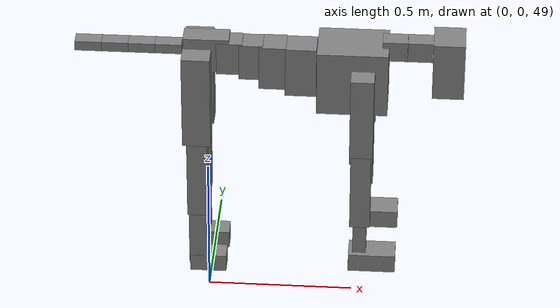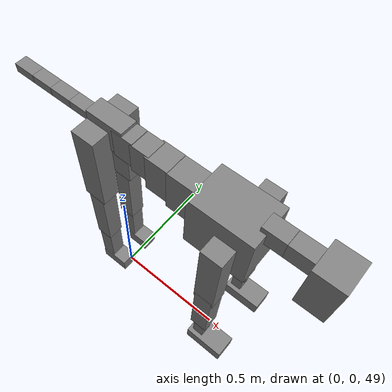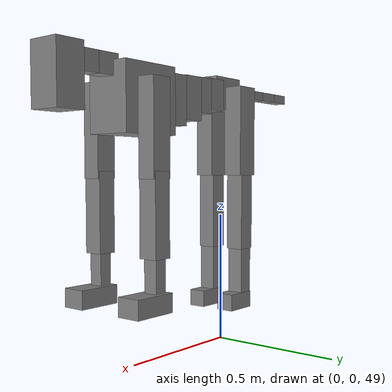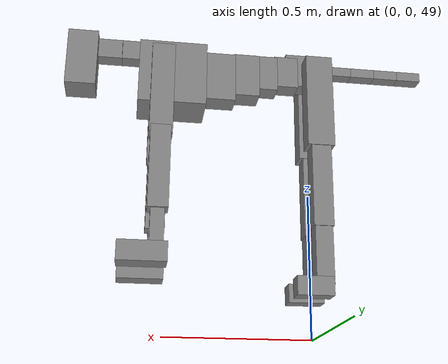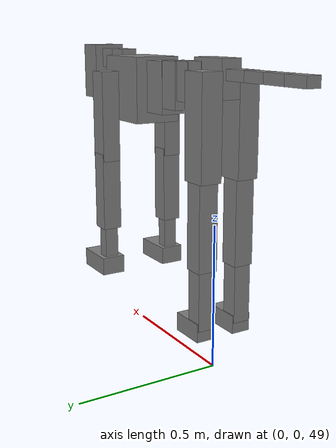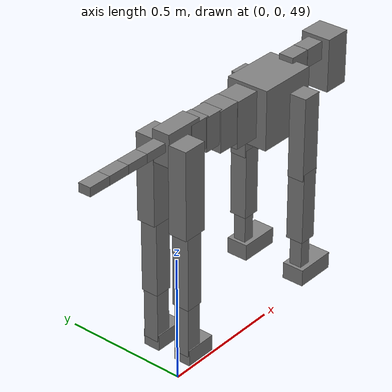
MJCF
<mujoco model="dog">

    <default>
        <joint armature="0.02" stiffness="1" damping="0.2" limited="true" />
        <geom condim="3" friction="1 0.05 0.05" margin="0.01" />
        <motor ctrllimited="true" ctrlrange="-1.0 1.0" forcelimited="true" gear="50" />
    </default>

    <compiler inertiafromgeom="true" angle="radian" />

    <option timestep="0.016" iterations="50" tolerance="1e-10" solver="Newton" jacobian="dense" cone="pyramidal" />

    <size nconmax="20000" njmax="60000" nstack="5000000" />
    <visual>
        <map force="0.1" zfar="30" />
        <rgba haze="0.15 0.25 0.35 1" />
        <quality shadowsize="2048" />
        <global offwidth="800" offheight="800" />
    </visual>

    <asset>
        <texture type="skybox" builtin="gradient" rgb1="0.3 0.5 0.7" rgb2="0 0 0" width="512" height="512" />
        <texture name="texplane" type="2d" builtin="checker" rgb1=".2 .3 .4" rgb2=".1 0.15 0.2" width="512" height="512" mark="cross" markrgb=".8 .8 .8" />
        <texture name="texgeom" type="cube" builtin="flat" mark="cross" width="127" height="1278" rgb1="0.8 0.6 0.4" rgb2="0.8 0.6 0.4" markrgb="1 1 1" random="0.01" />

        <material name="matplane" reflectance="0.3" texture="texplane" texrepeat="1 1" texuniform="true" />
        <material name="matgeom" texture="texgeom" texuniform="true" rgba="0.8 0.6 .4 1" />
    </asset>

    <worldbody>
        <geom name="floor" pos="0 0 0" size="0 0 .25" type="plane" material="matplane" condim="3" />

        <light directional="false" diffuse=".2 .2 .2" specular="0 0 0" pos="0 0 5" dir="0 0 -1" castshadow="false" />
        <light mode="targetbodycom" target="torso" directional="false" diffuse=".8 .8 .8" specular="0.3 0.3 0.3" pos="0 0 4.0" dir="0 0 -1" />

        <body name="root" pos="0 0 50">
            <freejoint name="root_1" />
            <geom type="box" pos="0 0 -0.02" size="0.0774  0.0358  0.063" density="2030" />

            <body name="spine1" pos="0.054 0 0">
                <joint name="spine1_y" axis="0 1 0" range="0 0.7" limited="true" />
                <geom type="box" pos="0.02375 0 -0.03" size="0.04375  0.0375  0.05985" density="2030" />

                <body name="spine2" pos="0.0612 0 0">
                    <joint name="spine2_y" axis="0 1 0" range="-0.15 0.15" limited="true" />
                    <geom type="box" pos="0.03555  0  -0.04" size="0.04055  0.039  0.06615" density="2030" />

                    <body name="spine3" pos="0.0730 0 0">
                        <joint name="spine3_y" axis="0 1 0" range="-0.15 0.15" limited="true" />
                        <geom type="box" pos="0.03555  0  -0.057" size="0.04555  0.0445  0.081" density="2030" />

                        <body name="spine4" pos="0.0780 0 0">
                            <joint name="spine4_y" axis="0 1 0" range="-0.15 0.15" limited="true" />
                            <geom type="box" pos="0.05265  0  -0.07" size="0.05265  0.045  0.09135" density="2030" />

                            <body name="torso" pos="0.1082 0 0">
                                <joint name="torso_y" axis="0 1 0" range="-0.15 0.15" limited="true" />
                                <geom type="box" pos="0.11925  0  -0.085" size="0.11925  0.085  0.11745" density="2030" />

                                <body name="neck1" pos="0.2160  0   0.0180">
                                    <joint name="neck1_y" axis="0 1 0" range="-1.2  -1" limited="true" />
                                    <geom type="box" pos="0.0423  0  0" size="0.0423  0.03  0.036" density="2325" />

                                    <body name="neck2" pos="0.0853  0  0">
                                        <joint name="neck2_y" axis="0 1 0" range="0.1  0" limited="true" />
                                        <geom type="box" pos="0.0423  0  0" size="0.0423  0.03  0.036" density="2325" />

                                        <body name="head" pos="0.0853  0  0">
                                            <joint name="head_y" axis="0 1 0" range="-0.3  -0.2" limited="true" />
                                            <geom type="box" pos="0.0531  0  -0.055" size="0.0531  0.06  0.1044" density="4030" />

                                        </body>
                                    </body>
                                </body>

                                <body name="front_shoulder" pos="0.156  0   -0.0480">
                                    <joint name="front_shoulder_y" axis="0 1 0" range="-1 1.5" limited="true" />
                                    <geom type="box" pos="0 0.13 -0.1383" size="0.0392  0.0335  0.1650" density="1158" />
                                    <geom type="box" pos="0 -0.13 -0.1383" size="0.0392  0.0335  0.1650" density="1158" />

                                    <body name="front_elbow" pos="0  0  -0.2766">
                                        <joint name="front_elbow_y" axis="0 1 0" range="-2 0" limited="true" />
                                        <geom type="box" pos="0 0.13 -0.1433" size="0.0344  0.0351  0.1433" density="1081" />
                                        <geom type="box" pos="0 -0.13 -0.1433" size="0.0344  0.0351  0.1433" density="1081" />

                                        <body name="front_wrist" pos="0  0  -0.2866">
                                            <joint name="front_wrist_y" axis="0 1 0" range="-0.2 0" limited="true" />
                                            <geom type="box" pos="0 0.13 -0.0641" size="0.0232  0.0257  0.0772" density="1664" />
                                            <geom type="box" pos="0 -0.13 -0.0641" size="0.0232  0.0257  0.0772" density="1664" />

                                            <body name="front_finger_end" pos="0  0  -0.1282">
                                                <joint name="front_finger_y" axis="0 1 0" range="-0.4 1" limited="true" />
                                                <geom type="box" pos="0.0439  0.13  -0.0182" size="0.0805  0.0439  0.0332" density="1515" />
                                                <geom type="box" pos="0.0439  -0.13  -0.0182" size="0.0805  0.0439  0.0332" density="1515" />

                                            </body>

                                        </body>
                                    </body>
                                </body>

                            </body>
                        </body>
                    </body>
                </body>
            </body>

            <body name="back_hip" pos="-0.03 0 -0.018">
                <joint name="back_hip_y" axis="0 1 0" range="-1.5 0.3" limited="true" />
                <geom type="box" pos="0 0.07 -0.1494" size="0.0480  0.0376  0.1722" density="1154" />
                <geom type="box" pos="0 -0.07 -0.1494" size="0.0480  0.0376  0.1722" density="1154" />

                <body name="back_knee" pos="0  0  -0.2988">
                    <joint name="back_knee_y" axis="0 1 0" range="0 2.8" limited="true" />
                    <geom type="box" pos="0 0.07 -0.1494" size="0.0348  0.0343  0.1649" density="1227" />
                    <geom type="box" pos="0 -0.07 -0.1494" size="0.0348  0.0343  0.1649" density="1227" />

                    <body name="back_ankle" pos="0  0  -0.2988">
                        <joint name="back_ankle_y" axis="0 1 0" range="-2.2 0" limited="true" />
                        <geom type="box" pos="0 0.07 -0.1017" size="0.0306  0.0306  0.1130" density="1284" />
                        <geom type="box" pos="0 -0.07 -0.1017" size="0.0306  0.0306  0.1130" density="1284" />

                        <body name="back_toe_end" pos="0  0  -0.2034">
                            <joint name="back_toe_y" axis="0 1 0" range="-0.4 1" limited="true" />
                            <geom type="box" pos="0.0341  0.07  -0.0169" size="0.0625  0.0341  0.0319" density="1515" />
                            <geom type="box" pos="0.0341  -0.07  -0.0169" size="0.0625  0.0341  0.0319" density="1515" />

                        </body>
                    </body>
                </body>
            </body>

            <body name="tail1" pos="-0.074 0 -0.006">
                <joint name="tail1_y" axis="0 1 0" range="-0.2 0.2" limited="true" />
                <geom type="box" pos="-0.0536  0  0" size="0.045  0.025  0.0175" density="1587" />

                <body name="tail2" pos="-0.09 0 0">
                    <joint name="tail2_y" axis="0 1 0" range="-0.2 0.2" limited="true" />
                    <geom type="box" pos="-0.0536  0  0" size="0.045  0.025  0.0175" density="1587" />

                    <body name="tail3" pos="-0.09 0 0">
                        <joint name="tail3_y" axis="0 1 0" range="-0.2 0.2" limited="true" />
                        <geom type="box" pos="-0.0536  0  0" size="0.045  0.025  0.0175" density="1587" />

                        <body name="tail4" pos="-0.09 0 0">
                            <joint name="tail4_y" axis="0 1 0" range="-0.2 0.2" limited="true" />
                            <geom type="box" pos="-0.0536  0  0" size="0.045  0.025  0.0175" density="1587" />

                        </body>
                    </body>
                </body>
            </body>
        </body>
    </worldbody>

    <actuator>
        <motor joint="spine1_y" forcerange="-150 150     " />
        <motor joint="spine2_y" forcerange="-150 150     " />
        <motor joint="spine3_y" forcerange="-150 150     " />
        <motor joint="spine4_y" forcerange="-150 150     " />
        <motor joint="torso_y" forcerange="-150 150     " />
        <motor joint="neck1_y" forcerange="-100 100       " />
        <motor joint="neck2_y" forcerange="-100 100       " />
        <motor joint="head_y" forcerange="-150 150       " />
        <motor joint="front_shoulder_y" forcerange="-167.41 155.79" />
        <motor joint="front_elbow_y" forcerange="-160.57 194.99" />
        <motor joint="front_wrist_y" forcerange="-102.97 102.84" />
        <motor joint="front_finger_y" forcerange="-95.04 99.22" />
        <motor joint="back_hip_y" forcerange="-391.85 309.65" />
        <motor joint="back_knee_y" forcerange="-312.01 386.35" />
        <motor joint="back_angle_y" forcerange="-183.45 206.65" />
        <motor joint="back_toe_y" forcerange="-90.52 102.08" />
        <motor joint="tail1_y" forcerange="-50 50     " />
        <motor joint="tail2_y" forcerange="-50 50     " />
        <motor joint="tail3_y" forcerange="-50 50     " />
        <motor joint="tail4_y" forcerange="-50 50     " />
    </actuator>
</mujoco>
